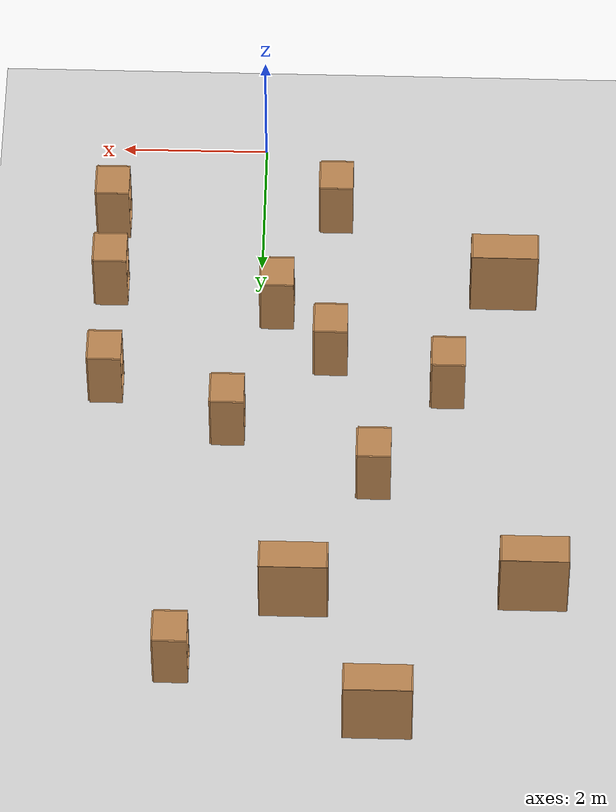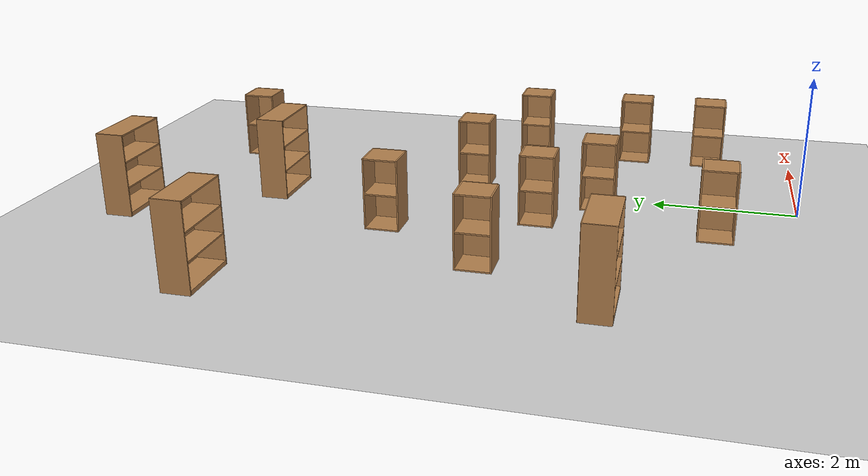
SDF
<sdf version="1.6">
 <world name="default">
  <model name="ground_plane">
   <static>1</static>
   <link name="link">
    <collision name="collision">
     <geometry><plane><normal>0 0 1</normal><size>100 100</size></plane></geometry>
     <surface><friction><ode><mu>100</mu><mu2>50</mu2></ode></friction></surface>
    </collision>
    <visual name="visual">
     <cast_shadows>0</cast_shadows>
     <geometry><plane><normal>0 0 1</normal><size>100 100</size></plane></geometry>
     <material>
      <script><uri>file://media/materials/scripts/gazebo.material</uri><name>Gazebo/Grey</name></script>
     </material>
    </visual>
   </link>
  </model>
  <model name="bookshelf_4">
   <static>1</static>
   <link name="link">
    <inertial><mass>1</mass></inertial>
    <collision name="back">
     <pose>0 0.005 0.6 0 -0 0</pose>
     <geometry><box><size>0.9 0.01 1.2</size></box></geometry>
    </collision>
    <visual name="visual1">
     <pose>0 0.005 0.6 0 -0 0</pose>
     <geometry><box><size>0.9 0.01 1.2</size></box></geometry>
     <material>
      <script><uri>file://media/materials/scripts/gazebo.material</uri><name>Gazebo/Wood</name></script>
     </material>
    </visual>
    <collision name="left_side">
     <pose>0.45 -0.195 0.6 0 -0 0</pose>
     <geometry><box><size>0.02 0.4 1.2</size></box></geometry>
    </collision>
    <visual name="visual2">
     <pose>0.45 -0.195 0.6 0 -0 0</pose>
     <geometry><box><size>0.02 0.4 1.2</size></box></geometry>
     <material>
      <script><uri>file://media/materials/scripts/gazebo.material</uri><name>Gazebo/Wood</name></script>
     </material>
    </visual>
    <collision name="right_side">
     <pose>-0.45 -0.195 0.6 0 -0 0</pose>
     <geometry><box><size>0.02 0.4 1.2</size></box></geometry>
    </collision>
    <visual name="visual3">
     <pose>-0.45 -0.195 0.6 0 -0 0</pose>
     <geometry><box><size>0.02 0.4 1.2</size></box></geometry>
     <material>
      <script><uri>file://media/materials/scripts/gazebo.material</uri><name>Gazebo/Wood</name></script>
     </material>
    </visual>
    <collision name="bottom">
     <pose>0 -0.195 0.03 0 -0 0</pose>
     <geometry><box><size>0.88 0.4 0.06</size></box></geometry>
    </collision>
    <visual name="visual4">
     <pose>0 -0.195 0.03 0 -0 0</pose>
     <geometry><box><size>0.88 0.4 0.06</size></box></geometry>
     <material>
      <script><uri>file://media/materials/scripts/gazebo.material</uri><name>Gazebo/Wood</name></script>
     </material>
    </visual>
    <collision name="top">
     <pose>0 -0.195 1.19 0 -0 0</pose>
     <geometry><box><size>0.88 0.4 0.02</size></box></geometry>
    </collision>
    <visual name="visual5">
     <pose>0 -0.195 1.19 0 -0 0</pose>
     <geometry><box><size>0.88 0.4 0.02</size></box></geometry>
     <material>
      <script><uri>file://media/materials/scripts/gazebo.material</uri><name>Gazebo/Wood</name></script>
     </material>
    </visual>
    <collision name="low_shelf">
     <pose>0 -0.195 0.43 0 -0 0</pose>
     <geometry><box><size>0.88 0.4 0.02</size></box></geometry>
    </collision>
    <visual name="visual6">
     <pose>0 -0.195 0.43 0 -0 0</pose>
     <geometry><box><size>0.88 0.4 0.02</size></box></geometry>
     <material>
      <script><uri>file://media/materials/scripts/gazebo.material</uri><name>Gazebo/Wood</name></script>
     </material>
    </visual>
    <collision name="high_shelf">
     <pose>0 -0.195 0.8 0 -0 0</pose>
     <geometry><box><size>0.88 0.4 0.02</size></box></geometry>
    </collision>
    <visual name="visual7">
     <pose>0 -0.195 0.8 0 -0 0</pose>
     <geometry><box><size>0.88 0.4 0.02</size></box></geometry>
     <material>
      <script><uri>file://media/materials/scripts/gazebo.material</uri><name>Gazebo/Wood</name></script>
     </material>
    </visual>
   </link>
   <pose>-1.73803 9.54025 0 0 -0 0</pose>
  </model>
  <model name="bookshelf_5">
   <static>1</static>
   <link name="link">
    <inertial><mass>1</mass></inertial>
    <collision name="back">
     <pose>0 0.005 0.6 0 -0 0</pose>
     <geometry><box><size>0.9 0.01 1.2</size></box></geometry>
    </collision>
    <visual name="visual1">
     <pose>0 0.005 0.6 0 -0 0</pose>
     <geometry><box><size>0.9 0.01 1.2</size></box></geometry>
     <material>
      <script><uri>file://media/materials/scripts/gazebo.material</uri><name>Gazebo/Wood</name></script>
     </material>
    </visual>
    <collision name="left_side">
     <pose>0.45 -0.195 0.6 0 -0 0</pose>
     <geometry><box><size>0.02 0.4 1.2</size></box></geometry>
    </collision>
    <visual name="visual2">
     <pose>0.45 -0.195 0.6 0 -0 0</pose>
     <geometry><box><size>0.02 0.4 1.2</size></box></geometry>
     <material>
      <script><uri>file://media/materials/scripts/gazebo.material</uri><name>Gazebo/Wood</name></script>
     </material>
    </visual>
    <collision name="right_side">
     <pose>-0.45 -0.195 0.6 0 -0 0</pose>
     <geometry><box><size>0.02 0.4 1.2</size></box></geometry>
    </collision>
    <visual name="visual3">
     <pose>-0.45 -0.195 0.6 0 -0 0</pose>
     <geometry><box><size>0.02 0.4 1.2</size></box></geometry>
     <material>
      <script><uri>file://media/materials/scripts/gazebo.material</uri><name>Gazebo/Wood</name></script>
     </material>
    </visual>
    <collision name="bottom">
     <pose>0 -0.195 0.03 0 -0 0</pose>
     <geometry><box><size>0.88 0.4 0.06</size></box></geometry>
    </collision>
    <visual name="visual4">
     <pose>0 -0.195 0.03 0 -0 0</pose>
     <geometry><box><size>0.88 0.4 0.06</size></box></geometry>
     <material>
      <script><uri>file://media/materials/scripts/gazebo.material</uri><name>Gazebo/Wood</name></script>
     </material>
    </visual>
    <collision name="top">
     <pose>0 -0.195 1.19 0 -0 0</pose>
     <geometry><box><size>0.88 0.4 0.02</size></box></geometry>
    </collision>
    <visual name="visual5">
     <pose>0 -0.195 1.19 0 -0 0</pose>
     <geometry><box><size>0.88 0.4 0.02</size></box></geometry>
     <material>
      <script><uri>file://media/materials/scripts/gazebo.material</uri><name>Gazebo/Wood</name></script>
     </material>
    </visual>
    <collision name="low_shelf">
     <pose>0 -0.195 0.43 0 -0 0</pose>
     <geometry><box><size>0.88 0.4 0.02</size></box></geometry>
    </collision>
    <visual name="visual6">
     <pose>0 -0.195 0.43 0 -0 0</pose>
     <geometry><box><size>0.88 0.4 0.02</size></box></geometry>
     <material>
      <script><uri>file://media/materials/scripts/gazebo.material</uri><name>Gazebo/Wood</name></script>
     </material>
    </visual>
    <collision name="high_shelf">
     <pose>0 -0.195 0.8 0 -0 0</pose>
     <geometry><box><size>0.88 0.4 0.02</size></box></geometry>
    </collision>
    <visual name="visual7">
     <pose>0 -0.195 0.8 0 -0 0</pose>
     <geometry><box><size>0.88 0.4 0.02</size></box></geometry>
     <material>
      <script><uri>file://media/materials/scripts/gazebo.material</uri><name>Gazebo/Wood</name></script>
     </material>
    </visual>
   </link>
   <pose>-0.58974 7.68107 0 0 -0 0</pose>
  </model>
  <model name="bookshelf_7">
   <static>1</static>
   <link name="link">
    <inertial><mass>1</mass></inertial>
    <collision name="back">
     <pose>0 0.005 0.6 0 -0 0</pose>
     <geometry><box><size>0.9 0.01 1.2</size></box></geometry>
    </collision>
    <visual name="visual1">
     <pose>0 0.005 0.6 0 -0 0</pose>
     <geometry><box><size>0.9 0.01 1.2</size></box></geometry>
     <material>
      <script><uri>file://media/materials/scripts/gazebo.material</uri><name>Gazebo/Wood</name></script>
     </material>
    </visual>
    <collision name="left_side">
     <pose>0.45 -0.195 0.6 0 -0 0</pose>
     <geometry><box><size>0.02 0.4 1.2</size></box></geometry>
    </collision>
    <visual name="visual2">
     <pose>0.45 -0.195 0.6 0 -0 0</pose>
     <geometry><box><size>0.02 0.4 1.2</size></box></geometry>
     <material>
      <script><uri>file://media/materials/scripts/gazebo.material</uri><name>Gazebo/Wood</name></script>
     </material>
    </visual>
    <collision name="right_side">
     <pose>-0.45 -0.195 0.6 0 -0 0</pose>
     <geometry><box><size>0.02 0.4 1.2</size></box></geometry>
    </collision>
    <visual name="visual3">
     <pose>-0.45 -0.195 0.6 0 -0 0</pose>
     <geometry><box><size>0.02 0.4 1.2</size></box></geometry>
     <material>
      <script><uri>file://media/materials/scripts/gazebo.material</uri><name>Gazebo/Wood</name></script>
     </material>
    </visual>
    <collision name="bottom">
     <pose>0 -0.195 0.03 0 -0 0</pose>
     <geometry><box><size>0.88 0.4 0.06</size></box></geometry>
    </collision>
    <visual name="visual4">
     <pose>0 -0.195 0.03 0 -0 0</pose>
     <geometry><box><size>0.88 0.4 0.06</size></box></geometry>
     <material>
      <script><uri>file://media/materials/scripts/gazebo.material</uri><name>Gazebo/Wood</name></script>
     </material>
    </visual>
    <collision name="top">
     <pose>0 -0.195 1.19 0 -0 0</pose>
     <geometry><box><size>0.88 0.4 0.02</size></box></geometry>
    </collision>
    <visual name="visual5">
     <pose>0 -0.195 1.19 0 -0 0</pose>
     <geometry><box><size>0.88 0.4 0.02</size></box></geometry>
     <material>
      <script><uri>file://media/materials/scripts/gazebo.material</uri><name>Gazebo/Wood</name></script>
     </material>
    </visual>
    <collision name="low_shelf">
     <pose>0 -0.195 0.43 0 -0 0</pose>
     <geometry><box><size>0.88 0.4 0.02</size></box></geometry>
    </collision>
    <visual name="visual6">
     <pose>0 -0.195 0.43 0 -0 0</pose>
     <geometry><box><size>0.88 0.4 0.02</size></box></geometry>
     <material>
      <script><uri>file://media/materials/scripts/gazebo.material</uri><name>Gazebo/Wood</name></script>
     </material>
    </visual>
    <collision name="high_shelf">
     <pose>0 -0.195 0.8 0 -0 0</pose>
     <geometry><box><size>0.88 0.4 0.02</size></box></geometry>
    </collision>
    <visual name="visual7">
     <pose>0 -0.195 0.8 0 -0 0</pose>
     <geometry><box><size>0.88 0.4 0.02</size></box></geometry>
     <material>
      <script><uri>file://media/materials/scripts/gazebo.material</uri><name>Gazebo/Wood</name></script>
     </material>
    </visual>
   </link>
   <pose>-3.76246 7.5113 0 0 -0 0</pose>
  </model>
  <model name="cabinet">
   <static>1</static>
   <link name="cabinet_bottom_plate">
    <inertial>
     <pose>0 0 -1 0 -0 0</pose>
     <inertia><ixx>2.05</ixx><ixy>0</ixy><ixz>0</ixz><iyy>2.05</iyy><iyz>0</iyz><izz>2.05</izz></inertia>
     <mass>25</mass>
    </inertial>
    <collision name="cabinet_bottom_plate_geom">
     <pose>0 0 0.01 0 -0 0</pose>
     <geometry><box><size>0.45 0.45 0.02</size></box></geometry>
    </collision>
    <visual name="cabinet_bottom_plate_geom_visual">
     <pose>0 0 0.01 0 -0 0</pose>
     <geometry><box><size>0.45 0.45 0.02</size></box></geometry>
     <material>
      <script><uri>file://media/materials/scripts/gazebo.material</uri><name>Gazebo/Wood</name></script>
     </material>
    </visual>
    <collision name="cabinet_bottom_plate_geom_cabinet_back_plate">
     <pose>0.235 0 0.51 0 -0 0</pose>
     <geometry><box><size>0.02 0.45 1.02</size></box></geometry>
    </collision>
    <visual name="cabinet_bottom_plate_geom_cabinet_back_plate_visual">
     <pose>0.235 0 0.51 0 -0 0</pose>
     <geometry><box><size>0.02 0.45 1.02</size></box></geometry>
     <material>
      <script><uri>file://media/materials/scripts/gazebo.material</uri><name>Gazebo/Wood</name></script>
     </material>
    </visual>
    <collision name="cabinet_bottom_plate_geom_cabinet_left_plate">
     <pose>0 0.235 0.51 0 -0 0</pose>
     <geometry><box><size>0.45 0.02 1.02</size></box></geometry>
    </collision>
    <visual name="cabinet_bottom_plate_geom_cabinet_left_plate_visual">
     <pose>0 0.235 0.51 0 -0 0</pose>
     <geometry><box><size>0.45 0.02 1.02</size></box></geometry>
     <material>
      <script><uri>file://media/materials/scripts/gazebo.material</uri><name>Gazebo/Wood</name></script>
     </material>
    </visual>
    <collision name="cabinet_bottom_plate_geom_cabinet_middle_plate">
     <pose>0 0 0.51 0 -0 0</pose>
     <geometry><box><size>0.45 0.45 0.02</size></box></geometry>
    </collision>
    <visual name="cabinet_bottom_plate_geom_cabinet_middle_plate_visual">
     <pose>0 0 0.51 0 -0 0</pose>
     <geometry><box><size>0.45 0.45 0.02</size></box></geometry>
     <material>
      <script><uri>file://media/materials/scripts/gazebo.material</uri><name>Gazebo/Wood</name></script>
     </material>
    </visual>
    <collision name="cabinet_bottom_plate_geom_cabinet_right_plate">
     <pose>0 -0.235 0.51 0 -0 0</pose>
     <geometry><box><size>0.45 0.02 1.02</size></box></geometry>
    </collision>
    <visual name="cabinet_bottom_plate_geom_cabinet_right_plate_visual">
     <pose>0 -0.235 0.51 0 -0 0</pose>
     <geometry><box><size>0.45 0.02 1.02</size></box></geometry>
     <material>
      <script><uri>file://media/materials/scripts/gazebo.material</uri><name>Gazebo/Wood</name></script>
     </material>
    </visual>
    <collision name="cabinet_bottom_plate_geom_cabinet_top_plate">
     <pose>0 0 1.01 0 -0 0</pose>
     <geometry><box><size>0.45 0.45 0.02</size></box></geometry>
    </collision>
    <visual name="cabinet_bottom_plate_geom_cabinet_top_plate_visual">
     <pose>0 0 1.01 0 -0 0</pose>
     <geometry><box><size>0.45 0.45 0.02</size></box></geometry>
     <material>
      <script><uri>file://media/materials/scripts/gazebo.material</uri><name>Gazebo/Wood</name></script>
     </material>
    </visual>
   </link>
   <pose>0.987671 8.5173 0 0 -0 0</pose>
  </model>
  <model name="bookshelf_33">
   <static>1</static>
   <link name="link">
    <inertial><mass>1</mass></inertial>
    <collision name="back">
     <pose>0 0.005 0.6 0 -0 0</pose>
     <geometry><box><size>0.9 0.01 1.2</size></box></geometry>
    </collision>
    <visual name="visual1">
     <pose>0 0.005 0.6 0 -0 0</pose>
     <geometry><box><size>0.9 0.01 1.2</size></box></geometry>
     <material>
      <script><uri>file://media/materials/scripts/gazebo.material</uri><name>Gazebo/Wood</name></script>
     </material>
    </visual>
    <collision name="left_side">
     <pose>0.45 -0.195 0.6 0 -0 0</pose>
     <geometry><box><size>0.02 0.4 1.2</size></box></geometry>
    </collision>
    <visual name="visual2">
     <pose>0.45 -0.195 0.6 0 -0 0</pose>
     <geometry><box><size>0.02 0.4 1.2</size></box></geometry>
     <material>
      <script><uri>file://media/materials/scripts/gazebo.material</uri><name>Gazebo/Wood</name></script>
     </material>
    </visual>
    <collision name="right_side">
     <pose>-0.45 -0.195 0.6 0 -0 0</pose>
     <geometry><box><size>0.02 0.4 1.2</size></box></geometry>
    </collision>
    <visual name="visual3">
     <pose>-0.45 -0.195 0.6 0 -0 0</pose>
     <geometry><box><size>0.02 0.4 1.2</size></box></geometry>
     <material>
      <script><uri>file://media/materials/scripts/gazebo.material</uri><name>Gazebo/Wood</name></script>
     </material>
    </visual>
    <collision name="bottom">
     <pose>0 -0.195 0.03 0 -0 0</pose>
     <geometry><box><size>0.88 0.4 0.06</size></box></geometry>
    </collision>
    <visual name="visual4">
     <pose>0 -0.195 0.03 0 -0 0</pose>
     <geometry><box><size>0.88 0.4 0.06</size></box></geometry>
     <material>
      <script><uri>file://media/materials/scripts/gazebo.material</uri><name>Gazebo/Wood</name></script>
     </material>
    </visual>
    <collision name="top">
     <pose>0 -0.195 1.19 0 -0 0</pose>
     <geometry><box><size>0.88 0.4 0.02</size></box></geometry>
    </collision>
    <visual name="visual5">
     <pose>0 -0.195 1.19 0 -0 0</pose>
     <geometry><box><size>0.88 0.4 0.02</size></box></geometry>
     <material>
      <script><uri>file://media/materials/scripts/gazebo.material</uri><name>Gazebo/Wood</name></script>
     </material>
    </visual>
    <collision name="low_shelf">
     <pose>0 -0.195 0.43 0 -0 0</pose>
     <geometry><box><size>0.88 0.4 0.02</size></box></geometry>
    </collision>
    <visual name="visual6">
     <pose>0 -0.195 0.43 0 -0 0</pose>
     <geometry><box><size>0.88 0.4 0.02</size></box></geometry>
     <material>
      <script><uri>file://media/materials/scripts/gazebo.material</uri><name>Gazebo/Wood</name></script>
     </material>
    </visual>
    <collision name="high_shelf">
     <pose>0 -0.195 0.8 0 -0 0</pose>
     <geometry><box><size>0.88 0.4 0.02</size></box></geometry>
    </collision>
    <visual name="visual7">
     <pose>0 -0.195 0.8 0 -0 0</pose>
     <geometry><box><size>0.88 0.4 0.02</size></box></geometry>
     <material>
      <script><uri>file://media/materials/scripts/gazebo.material</uri><name>Gazebo/Wood</name></script>
     </material>
    </visual>
   </link>
   <pose>-3.33267 2.61567 0 0 -0 0</pose>
  </model>
  <model name="cabinet_33">
   <static>1</static>
   <link name="cabinet_bottom_plate">
    <inertial>
     <pose>0 0 -1 0 -0 0</pose>
     <inertia><ixx>2.05</ixx><ixy>0</ixy><ixz>0</ixz><iyy>2.05</iyy><iyz>0</iyz><izz>2.05</izz></inertia>
     <mass>25</mass>
    </inertial>
    <collision name="cabinet_bottom_plate_geom">
     <pose>0 0 0.01 0 -0 0</pose>
     <geometry><box><size>0.45 0.45 0.02</size></box></geometry>
    </collision>
    <visual name="cabinet_bottom_plate_geom_visual">
     <pose>0 0 0.01 0 -0 0</pose>
     <geometry><box><size>0.45 0.45 0.02</size></box></geometry>
     <material>
      <script><uri>file://media/materials/scripts/gazebo.material</uri><name>Gazebo/Wood</name></script>
     </material>
    </visual>
    <collision name="cabinet_bottom_plate_geom_cabinet_back_plate">
     <pose>0.235 0 0.51 0 -0 0</pose>
     <geometry><box><size>0.02 0.45 1.02</size></box></geometry>
    </collision>
    <visual name="cabinet_bottom_plate_geom_cabinet_back_plate_visual">
     <pose>0.235 0 0.51 0 -0 0</pose>
     <geometry><box><size>0.02 0.45 1.02</size></box></geometry>
     <material>
      <script><uri>file://media/materials/scripts/gazebo.material</uri><name>Gazebo/Wood</name></script>
     </material>
    </visual>
    <collision name="cabinet_bottom_plate_geom_cabinet_left_plate">
     <pose>0 0.235 0.51 0 -0 0</pose>
     <geometry><box><size>0.45 0.02 1.02</size></box></geometry>
    </collision>
    <visual name="cabinet_bottom_plate_geom_cabinet_left_plate_visual">
     <pose>0 0.235 0.51 0 -0 0</pose>
     <geometry><box><size>0.45 0.02 1.02</size></box></geometry>
     <material>
      <script><uri>file://media/materials/scripts/gazebo.material</uri><name>Gazebo/Wood</name></script>
     </material>
    </visual>
    <collision name="cabinet_bottom_plate_geom_cabinet_middle_plate">
     <pose>0 0 0.51 0 -0 0</pose>
     <geometry><box><size>0.45 0.45 0.02</size></box></geometry>
    </collision>
    <visual name="cabinet_bottom_plate_geom_cabinet_middle_plate_visual">
     <pose>0 0 0.51 0 -0 0</pose>
     <geometry><box><size>0.45 0.45 0.02</size></box></geometry>
     <material>
      <script><uri>file://media/materials/scripts/gazebo.material</uri><name>Gazebo/Wood</name></script>
     </material>
    </visual>
    <collision name="cabinet_bottom_plate_geom_cabinet_right_plate">
     <pose>0 -0.235 0.51 0 -0 0</pose>
     <geometry><box><size>0.45 0.02 1.02</size></box></geometry>
    </collision>
    <visual name="cabinet_bottom_plate_geom_cabinet_right_plate_visual">
     <pose>0 -0.235 0.51 0 -0 0</pose>
     <geometry><box><size>0.45 0.02 1.02</size></box></geometry>
     <material>
      <script><uri>file://media/materials/scripts/gazebo.material</uri><name>Gazebo/Wood</name></script>
     </material>
    </visual>
    <collision name="cabinet_bottom_plate_geom_cabinet_top_plate">
     <pose>0 0 1.01 0 -0 0</pose>
     <geometry><box><size>0.45 0.45 0.02</size></box></geometry>
    </collision>
    <visual name="cabinet_bottom_plate_geom_cabinet_top_plate_visual">
     <pose>0 0 1.01 0 -0 0</pose>
     <geometry><box><size>0.45 0.45 0.02</size></box></geometry>
     <material>
      <script><uri>file://media/materials/scripts/gazebo.material</uri><name>Gazebo/Wood</name></script>
     </material>
    </visual>
   </link>
   <pose>-2.59292 4.05344 0 0 -0 0</pose>
  </model>
  <model name="cabinet_38">
   <static>1</static>
   <link name="cabinet_bottom_plate">
    <inertial>
     <pose>0 0 -1 0 -0 0</pose>
     <inertia><ixx>2.05</ixx><ixy>0</ixy><ixz>0</ixz><iyy>2.05</iyy><iyz>0</iyz><izz>2.05</izz></inertia>
     <mass>25</mass>
    </inertial>
    <collision name="cabinet_bottom_plate_geom">
     <pose>0 0 0.01 0 -0 0</pose>
     <geometry><box><size>0.45 0.45 0.02</size></box></geometry>
    </collision>
    <visual name="cabinet_bottom_plate_geom_visual">
     <pose>0 0 0.01 0 -0 0</pose>
     <geometry><box><size>0.45 0.45 0.02</size></box></geometry>
     <material>
      <script><uri>file://media/materials/scripts/gazebo.material</uri><name>Gazebo/Wood</name></script>
     </material>
    </visual>
    <collision name="cabinet_bottom_plate_geom_cabinet_back_plate">
     <pose>0.235 0 0.51 0 -0 0</pose>
     <geometry><box><size>0.02 0.45 1.02</size></box></geometry>
    </collision>
    <visual name="cabinet_bottom_plate_geom_cabinet_back_plate_visual">
     <pose>0.235 0 0.51 0 -0 0</pose>
     <geometry><box><size>0.02 0.45 1.02</size></box></geometry>
     <material>
      <script><uri>file://media/materials/scripts/gazebo.material</uri><name>Gazebo/Wood</name></script>
     </material>
    </visual>
    <collision name="cabinet_bottom_plate_geom_cabinet_left_plate">
     <pose>0 0.235 0.51 0 -0 0</pose>
     <geometry><box><size>0.45 0.02 1.02</size></box></geometry>
    </collision>
    <visual name="cabinet_bottom_plate_geom_cabinet_left_plate_visual">
     <pose>0 0.235 0.51 0 -0 0</pose>
     <geometry><box><size>0.45 0.02 1.02</size></box></geometry>
     <material>
      <script><uri>file://media/materials/scripts/gazebo.material</uri><name>Gazebo/Wood</name></script>
     </material>
    </visual>
    <collision name="cabinet_bottom_plate_geom_cabinet_middle_plate">
     <pose>0 0 0.51 0 -0 0</pose>
     <geometry><box><size>0.45 0.45 0.02</size></box></geometry>
    </collision>
    <visual name="cabinet_bottom_plate_geom_cabinet_middle_plate_visual">
     <pose>0 0 0.51 0 -0 0</pose>
     <geometry><box><size>0.45 0.45 0.02</size></box></geometry>
     <material>
      <script><uri>file://media/materials/scripts/gazebo.material</uri><name>Gazebo/Wood</name></script>
     </material>
    </visual>
    <collision name="cabinet_bottom_plate_geom_cabinet_right_plate">
     <pose>0 -0.235 0.51 0 -0 0</pose>
     <geometry><box><size>0.45 0.02 1.02</size></box></geometry>
    </collision>
    <visual name="cabinet_bottom_plate_geom_cabinet_right_plate_visual">
     <pose>0 -0.235 0.51 0 -0 0</pose>
     <geometry><box><size>0.45 0.02 1.02</size></box></geometry>
     <material>
      <script><uri>file://media/materials/scripts/gazebo.material</uri><name>Gazebo/Wood</name></script>
     </material>
    </visual>
    <collision name="cabinet_bottom_plate_geom_cabinet_top_plate">
     <pose>0 0 1.01 0 -0 0</pose>
     <geometry><box><size>0.45 0.45 0.02</size></box></geometry>
    </collision>
    <visual name="cabinet_bottom_plate_geom_cabinet_top_plate_visual">
     <pose>0 0 1.01 0 -0 0</pose>
     <geometry><box><size>0.45 0.45 0.02</size></box></geometry>
     <material>
      <script><uri>file://media/materials/scripts/gazebo.material</uri><name>Gazebo/Wood</name></script>
     </material>
    </visual>
   </link>
   <pose>-1.01025 1.12892 0 0 -0 0</pose>
  </model>
  <model name="cabinet_40">
   <static>1</static>
   <link name="cabinet_bottom_plate">
    <inertial>
     <pose>0 0 -1 0 -0 0</pose>
     <inertia><ixx>2.05</ixx><ixy>0</ixy><ixz>0</ixz><iyy>2.05</iyy><iyz>0</iyz><izz>2.05</izz></inertia>
     <mass>25</mass>
    </inertial>
    <collision name="cabinet_bottom_plate_geom">
     <pose>0 0 0.01 0 -0 0</pose>
     <geometry><box><size>0.45 0.45 0.02</size></box></geometry>
    </collision>
    <visual name="cabinet_bottom_plate_geom_visual">
     <pose>0 0 0.01 0 -0 0</pose>
     <geometry><box><size>0.45 0.45 0.02</size></box></geometry>
     <material>
      <script><uri>file://media/materials/scripts/gazebo.material</uri><name>Gazebo/Wood</name></script>
     </material>
    </visual>
    <collision name="cabinet_bottom_plate_geom_cabinet_back_plate">
     <pose>0.235 0 0.51 0 -0 0</pose>
     <geometry><box><size>0.02 0.45 1.02</size></box></geometry>
    </collision>
    <visual name="cabinet_bottom_plate_geom_cabinet_back_plate_visual">
     <pose>0.235 0 0.51 0 -0 0</pose>
     <geometry><box><size>0.02 0.45 1.02</size></box></geometry>
     <material>
      <script><uri>file://media/materials/scripts/gazebo.material</uri><name>Gazebo/Wood</name></script>
     </material>
    </visual>
    <collision name="cabinet_bottom_plate_geom_cabinet_left_plate">
     <pose>0 0.235 0.51 0 -0 0</pose>
     <geometry><box><size>0.45 0.02 1.02</size></box></geometry>
    </collision>
    <visual name="cabinet_bottom_plate_geom_cabinet_left_plate_visual">
     <pose>0 0.235 0.51 0 -0 0</pose>
     <geometry><box><size>0.45 0.02 1.02</size></box></geometry>
     <material>
      <script><uri>file://media/materials/scripts/gazebo.material</uri><name>Gazebo/Wood</name></script>
     </material>
    </visual>
    <collision name="cabinet_bottom_plate_geom_cabinet_middle_plate">
     <pose>0 0 0.51 0 -0 0</pose>
     <geometry><box><size>0.45 0.45 0.02</size></box></geometry>
    </collision>
    <visual name="cabinet_bottom_plate_geom_cabinet_middle_plate_visual">
     <pose>0 0 0.51 0 -0 0</pose>
     <geometry><box><size>0.45 0.45 0.02</size></box></geometry>
     <material>
      <script><uri>file://media/materials/scripts/gazebo.material</uri><name>Gazebo/Wood</name></script>
     </material>
    </visual>
    <collision name="cabinet_bottom_plate_geom_cabinet_right_plate">
     <pose>0 -0.235 0.51 0 -0 0</pose>
     <geometry><box><size>0.45 0.02 1.02</size></box></geometry>
    </collision>
    <visual name="cabinet_bottom_plate_geom_cabinet_right_plate_visual">
     <pose>0 -0.235 0.51 0 -0 0</pose>
     <geometry><box><size>0.45 0.02 1.02</size></box></geometry>
     <material>
      <script><uri>file://media/materials/scripts/gazebo.material</uri><name>Gazebo/Wood</name></script>
     </material>
    </visual>
    <collision name="cabinet_bottom_plate_geom_cabinet_top_plate">
     <pose>0 0 1.01 0 -0 0</pose>
     <geometry><box><size>0.45 0.45 0.02</size></box></geometry>
    </collision>
    <visual name="cabinet_bottom_plate_geom_cabinet_top_plate_visual">
     <pose>0 0 1.01 0 -0 0</pose>
     <geometry><box><size>0.45 0.45 0.02</size></box></geometry>
     <material>
      <script><uri>file://media/materials/scripts/gazebo.material</uri><name>Gazebo/Wood</name></script>
     </material>
    </visual>
   </link>
   <pose>-0.99063 3.54391 0 0 -0 0</pose>
  </model>
  <model name="cabinet_41">
   <static>1</static>
   <link name="cabinet_bottom_plate">
    <inertial>
     <pose>0 0 -1 0 -0 0</pose>
     <inertia><ixx>2.05</ixx><ixy>0</ixy><ixz>0</ixz><iyy>2.05</iyy><iyz>0</iyz><izz>2.05</izz></inertia>
     <mass>25</mass>
    </inertial>
    <collision name="cabinet_bottom_plate_geom">
     <pose>0 0 0.01 0 -0 0</pose>
     <geometry><box><size>0.45 0.45 0.02</size></box></geometry>
    </collision>
    <visual name="cabinet_bottom_plate_geom_visual">
     <pose>0 0 0.01 0 -0 0</pose>
     <geometry><box><size>0.45 0.45 0.02</size></box></geometry>
     <material>
      <script><uri>file://media/materials/scripts/gazebo.material</uri><name>Gazebo/Wood</name></script>
     </material>
    </visual>
    <collision name="cabinet_bottom_plate_geom_cabinet_back_plate">
     <pose>0.235 0 0.51 0 -0 0</pose>
     <geometry><box><size>0.02 0.45 1.02</size></box></geometry>
    </collision>
    <visual name="cabinet_bottom_plate_geom_cabinet_back_plate_visual">
     <pose>0.235 0 0.51 0 -0 0</pose>
     <geometry><box><size>0.02 0.45 1.02</size></box></geometry>
     <material>
      <script><uri>file://media/materials/scripts/gazebo.material</uri><name>Gazebo/Wood</name></script>
     </material>
    </visual>
    <collision name="cabinet_bottom_plate_geom_cabinet_left_plate">
     <pose>0 0.235 0.51 0 -0 0</pose>
     <geometry><box><size>0.45 0.02 1.02</size></box></geometry>
    </collision>
    <visual name="cabinet_bottom_plate_geom_cabinet_left_plate_visual">
     <pose>0 0.235 0.51 0 -0 0</pose>
     <geometry><box><size>0.45 0.02 1.02</size></box></geometry>
     <material>
      <script><uri>file://media/materials/scripts/gazebo.material</uri><name>Gazebo/Wood</name></script>
     </material>
    </visual>
    <collision name="cabinet_bottom_plate_geom_cabinet_middle_plate">
     <pose>0 0 0.51 0 -0 0</pose>
     <geometry><box><size>0.45 0.45 0.02</size></box></geometry>
    </collision>
    <visual name="cabinet_bottom_plate_geom_cabinet_middle_plate_visual">
     <pose>0 0 0.51 0 -0 0</pose>
     <geometry><box><size>0.45 0.45 0.02</size></box></geometry>
     <material>
      <script><uri>file://media/materials/scripts/gazebo.material</uri><name>Gazebo/Wood</name></script>
     </material>
    </visual>
    <collision name="cabinet_bottom_plate_geom_cabinet_right_plate">
     <pose>0 -0.235 0.51 0 -0 0</pose>
     <geometry><box><size>0.45 0.02 1.02</size></box></geometry>
    </collision>
    <visual name="cabinet_bottom_plate_geom_cabinet_right_plate_visual">
     <pose>0 -0.235 0.51 0 -0 0</pose>
     <geometry><box><size>0.45 0.02 1.02</size></box></geometry>
     <material>
      <script><uri>file://media/materials/scripts/gazebo.material</uri><name>Gazebo/Wood</name></script>
     </material>
    </visual>
    <collision name="cabinet_bottom_plate_geom_cabinet_top_plate">
     <pose>0 0 1.01 0 -0 0</pose>
     <geometry><box><size>0.45 0.45 0.02</size></box></geometry>
    </collision>
    <visual name="cabinet_bottom_plate_geom_cabinet_top_plate_visual">
     <pose>0 0 1.01 0 -0 0</pose>
     <geometry><box><size>0.45 0.45 0.02</size></box></geometry>
     <material>
      <script><uri>file://media/materials/scripts/gazebo.material</uri><name>Gazebo/Wood</name></script>
     </material>
    </visual>
   </link>
   <pose>-1.61724 5.55802 0 0 -0 0</pose>
  </model>
  <model name="cabinet_42">
   <static>1</static>
   <link name="cabinet_bottom_plate">
    <inertial>
     <pose>0 0 -1 0 -0 0</pose>
     <inertia><ixx>2.05</ixx><ixy>0</ixy><ixz>0</ixz><iyy>2.05</iyy><iyz>0</iyz><izz>2.05</izz></inertia>
     <mass>25</mass>
    </inertial>
    <collision name="cabinet_bottom_plate_geom">
     <pose>0 0 0.01 0 -0 0</pose>
     <geometry><box><size>0.45 0.45 0.02</size></box></geometry>
    </collision>
    <visual name="cabinet_bottom_plate_geom_visual">
     <pose>0 0 0.01 0 -0 0</pose>
     <geometry><box><size>0.45 0.45 0.02</size></box></geometry>
     <material>
      <script><uri>file://media/materials/scripts/gazebo.material</uri><name>Gazebo/Wood</name></script>
     </material>
    </visual>
    <collision name="cabinet_bottom_plate_geom_cabinet_back_plate">
     <pose>0.235 0 0.51 0 -0 0</pose>
     <geometry><box><size>0.02 0.45 1.02</size></box></geometry>
    </collision>
    <visual name="cabinet_bottom_plate_geom_cabinet_back_plate_visual">
     <pose>0.235 0 0.51 0 -0 0</pose>
     <geometry><box><size>0.02 0.45 1.02</size></box></geometry>
     <material>
      <script><uri>file://media/materials/scripts/gazebo.material</uri><name>Gazebo/Wood</name></script>
     </material>
    </visual>
    <collision name="cabinet_bottom_plate_geom_cabinet_left_plate">
     <pose>0 0.235 0.51 0 -0 0</pose>
     <geometry><box><size>0.45 0.02 1.02</size></box></geometry>
    </collision>
    <visual name="cabinet_bottom_plate_geom_cabinet_left_plate_visual">
     <pose>0 0.235 0.51 0 -0 0</pose>
     <geometry><box><size>0.45 0.02 1.02</size></box></geometry>
     <material>
      <script><uri>file://media/materials/scripts/gazebo.material</uri><name>Gazebo/Wood</name></script>
     </material>
    </visual>
    <collision name="cabinet_bottom_plate_geom_cabinet_middle_plate">
     <pose>0 0 0.51 0 -0 0</pose>
     <geometry><box><size>0.45 0.45 0.02</size></box></geometry>
    </collision>
    <visual name="cabinet_bottom_plate_geom_cabinet_middle_plate_visual">
     <pose>0 0 0.51 0 -0 0</pose>
     <geometry><box><size>0.45 0.45 0.02</size></box></geometry>
     <material>
      <script><uri>file://media/materials/scripts/gazebo.material</uri><name>Gazebo/Wood</name></script>
     </material>
    </visual>
    <collision name="cabinet_bottom_plate_geom_cabinet_right_plate">
     <pose>0 -0.235 0.51 0 -0 0</pose>
     <geometry><box><size>0.45 0.02 1.02</size></box></geometry>
    </collision>
    <visual name="cabinet_bottom_plate_geom_cabinet_right_plate_visual">
     <pose>0 -0.235 0.51 0 -0 0</pose>
     <geometry><box><size>0.45 0.02 1.02</size></box></geometry>
     <material>
      <script><uri>file://media/materials/scripts/gazebo.material</uri><name>Gazebo/Wood</name></script>
     </material>
    </visual>
    <collision name="cabinet_bottom_plate_geom_cabinet_top_plate">
     <pose>0 0 1.01 0 -0 0</pose>
     <geometry><box><size>0.45 0.45 0.02</size></box></geometry>
    </collision>
    <visual name="cabinet_bottom_plate_geom_cabinet_top_plate_visual">
     <pose>0 0 1.01 0 -0 0</pose>
     <geometry><box><size>0.45 0.45 0.02</size></box></geometry>
     <material>
      <script><uri>file://media/materials/scripts/gazebo.material</uri><name>Gazebo/Wood</name></script>
     </material>
    </visual>
   </link>
   <pose>-0.23898 2.78627 0 0 -0 0</pose>
  </model>
  <model name="cabinet_43">
   <static>1</static>
   <link name="cabinet_bottom_plate">
    <inertial>
     <pose>0 0 -1 0 -0 0</pose>
     <inertia><ixx>2.05</ixx><ixy>0</ixy><ixz>0</ixz><iyy>2.05</iyy><iyz>0</iyz><izz>2.05</izz></inertia>
     <mass>25</mass>
    </inertial>
    <collision name="cabinet_bottom_plate_geom">
     <pose>0 0 0.01 0 -0 0</pose>
     <geometry><box><size>0.45 0.45 0.02</size></box></geometry>
    </collision>
    <visual name="cabinet_bottom_plate_geom_visual">
     <pose>0 0 0.01 0 -0 0</pose>
     <geometry><box><size>0.45 0.45 0.02</size></box></geometry>
     <material>
      <script><uri>file://media/materials/scripts/gazebo.material</uri><name>Gazebo/Wood</name></script>
     </material>
    </visual>
    <collision name="cabinet_bottom_plate_geom_cabinet_back_plate">
     <pose>0.235 0 0.51 0 -0 0</pose>
     <geometry><box><size>0.02 0.45 1.02</size></box></geometry>
    </collision>
    <visual name="cabinet_bottom_plate_geom_cabinet_back_plate_visual">
     <pose>0.235 0 0.51 0 -0 0</pose>
     <geometry><box><size>0.02 0.45 1.02</size></box></geometry>
     <material>
      <script><uri>file://media/materials/scripts/gazebo.material</uri><name>Gazebo/Wood</name></script>
     </material>
    </visual>
    <collision name="cabinet_bottom_plate_geom_cabinet_left_plate">
     <pose>0 0.235 0.51 0 -0 0</pose>
     <geometry><box><size>0.45 0.02 1.02</size></box></geometry>
    </collision>
    <visual name="cabinet_bottom_plate_geom_cabinet_left_plate_visual">
     <pose>0 0.235 0.51 0 -0 0</pose>
     <geometry><box><size>0.45 0.02 1.02</size></box></geometry>
     <material>
      <script><uri>file://media/materials/scripts/gazebo.material</uri><name>Gazebo/Wood</name></script>
     </material>
    </visual>
    <collision name="cabinet_bottom_plate_geom_cabinet_middle_plate">
     <pose>0 0 0.51 0 -0 0</pose>
     <geometry><box><size>0.45 0.45 0.02</size></box></geometry>
    </collision>
    <visual name="cabinet_bottom_plate_geom_cabinet_middle_plate_visual">
     <pose>0 0 0.51 0 -0 0</pose>
     <geometry><box><size>0.45 0.45 0.02</size></box></geometry>
     <material>
      <script><uri>file://media/materials/scripts/gazebo.material</uri><name>Gazebo/Wood</name></script>
     </material>
    </visual>
    <collision name="cabinet_bottom_plate_geom_cabinet_right_plate">
     <pose>0 -0.235 0.51 0 -0 0</pose>
     <geometry><box><size>0.45 0.02 1.02</size></box></geometry>
    </collision>
    <visual name="cabinet_bottom_plate_geom_cabinet_right_plate_visual">
     <pose>0 -0.235 0.51 0 -0 0</pose>
     <geometry><box><size>0.45 0.02 1.02</size></box></geometry>
     <material>
      <script><uri>file://media/materials/scripts/gazebo.material</uri><name>Gazebo/Wood</name></script>
     </material>
    </visual>
    <collision name="cabinet_bottom_plate_geom_cabinet_top_plate">
     <pose>0 0 1.01 0 -0 0</pose>
     <geometry><box><size>0.45 0.45 0.02</size></box></geometry>
    </collision>
    <visual name="cabinet_bottom_plate_geom_cabinet_top_plate_visual">
     <pose>0 0 1.01 0 -0 0</pose>
     <geometry><box><size>0.45 0.45 0.02</size></box></geometry>
     <material>
      <script><uri>file://media/materials/scripts/gazebo.material</uri><name>Gazebo/Wood</name></script>
     </material>
    </visual>
   </link>
   <pose>0.374258 4.72951 0 0 -0 0</pose>
  </model>
  <model name="cabinet_44">
   <static>1</static>
   <link name="cabinet_bottom_plate">
    <inertial>
     <pose>0 0 -1 0 -0 0</pose>
     <inertia><ixx>2.05</ixx><ixy>0</ixy><ixz>0</ixz><iyy>2.05</iyy><iyz>0</iyz><izz>2.05</izz></inertia>
     <mass>25</mass>
    </inertial>
    <collision name="cabinet_bottom_plate_geom">
     <pose>0 0 0.01 0 -0 0</pose>
     <geometry><box><size>0.45 0.45 0.02</size></box></geometry>
    </collision>
    <visual name="cabinet_bottom_plate_geom_visual">
     <pose>0 0 0.01 0 -0 0</pose>
     <geometry><box><size>0.45 0.45 0.02</size></box></geometry>
     <material>
      <script><uri>file://media/materials/scripts/gazebo.material</uri><name>Gazebo/Wood</name></script>
     </material>
    </visual>
    <collision name="cabinet_bottom_plate_geom_cabinet_back_plate">
     <pose>0.235 0 0.51 0 -0 0</pose>
     <geometry><box><size>0.02 0.45 1.02</size></box></geometry>
    </collision>
    <visual name="cabinet_bottom_plate_geom_cabinet_back_plate_visual">
     <pose>0.235 0 0.51 0 -0 0</pose>
     <geometry><box><size>0.02 0.45 1.02</size></box></geometry>
     <material>
      <script><uri>file://media/materials/scripts/gazebo.material</uri><name>Gazebo/Wood</name></script>
     </material>
    </visual>
    <collision name="cabinet_bottom_plate_geom_cabinet_left_plate">
     <pose>0 0.235 0.51 0 -0 0</pose>
     <geometry><box><size>0.45 0.02 1.02</size></box></geometry>
    </collision>
    <visual name="cabinet_bottom_plate_geom_cabinet_left_plate_visual">
     <pose>0 0.235 0.51 0 -0 0</pose>
     <geometry><box><size>0.45 0.02 1.02</size></box></geometry>
     <material>
      <script><uri>file://media/materials/scripts/gazebo.material</uri><name>Gazebo/Wood</name></script>
     </material>
    </visual>
    <collision name="cabinet_bottom_plate_geom_cabinet_middle_plate">
     <pose>0 0 0.51 0 -0 0</pose>
     <geometry><box><size>0.45 0.45 0.02</size></box></geometry>
    </collision>
    <visual name="cabinet_bottom_plate_geom_cabinet_middle_plate_visual">
     <pose>0 0 0.51 0 -0 0</pose>
     <geometry><box><size>0.45 0.45 0.02</size></box></geometry>
     <material>
      <script><uri>file://media/materials/scripts/gazebo.material</uri><name>Gazebo/Wood</name></script>
     </material>
    </visual>
    <collision name="cabinet_bottom_plate_geom_cabinet_right_plate">
     <pose>0 -0.235 0.51 0 -0 0</pose>
     <geometry><box><size>0.45 0.02 1.02</size></box></geometry>
    </collision>
    <visual name="cabinet_bottom_plate_geom_cabinet_right_plate_visual">
     <pose>0 -0.235 0.51 0 -0 0</pose>
     <geometry><box><size>0.45 0.02 1.02</size></box></geometry>
     <material>
      <script><uri>file://media/materials/scripts/gazebo.material</uri><name>Gazebo/Wood</name></script>
     </material>
    </visual>
    <collision name="cabinet_bottom_plate_geom_cabinet_top_plate">
     <pose>0 0 1.01 0 -0 0</pose>
     <geometry><box><size>0.45 0.45 0.02</size></box></geometry>
    </collision>
    <visual name="cabinet_bottom_plate_geom_cabinet_top_plate_visual">
     <pose>0 0 1.01 0 -0 0</pose>
     <geometry><box><size>0.45 0.45 0.02</size></box></geometry>
     <material>
      <script><uri>file://media/materials/scripts/gazebo.material</uri><name>Gazebo/Wood</name></script>
     </material>
    </visual>
   </link>
   <pose>2.0542 4.06855 0 0 -0 0</pose>
  </model>
  <model name="cabinet_45">
   <static>1</static>
   <link name="cabinet_bottom_plate">
    <inertial>
     <pose>0 0 -1 0 -0 0</pose>
     <inertia><ixx>2.05</ixx><ixy>0</ixy><ixz>0</ixz><iyy>2.05</iyy><iyz>0</iyz><izz>2.05</izz></inertia>
     <mass>25</mass>
    </inertial>
    <collision name="cabinet_bottom_plate_geom">
     <pose>0 0 0.01 0 -0 0</pose>
     <geometry><box><size>0.45 0.45 0.02</size></box></geometry>
    </collision>
    <visual name="cabinet_bottom_plate_geom_visual">
     <pose>0 0 0.01 0 -0 0</pose>
     <geometry><box><size>0.45 0.45 0.02</size></box></geometry>
     <material>
      <script><uri>file://media/materials/scripts/gazebo.material</uri><name>Gazebo/Wood</name></script>
     </material>
    </visual>
    <collision name="cabinet_bottom_plate_geom_cabinet_back_plate">
     <pose>0.235 0 0.51 0 -0 0</pose>
     <geometry><box><size>0.02 0.45 1.02</size></box></geometry>
    </collision>
    <visual name="cabinet_bottom_plate_geom_cabinet_back_plate_visual">
     <pose>0.235 0 0.51 0 -0 0</pose>
     <geometry><box><size>0.02 0.45 1.02</size></box></geometry>
     <material>
      <script><uri>file://media/materials/scripts/gazebo.material</uri><name>Gazebo/Wood</name></script>
     </material>
    </visual>
    <collision name="cabinet_bottom_plate_geom_cabinet_left_plate">
     <pose>0 0.235 0.51 0 -0 0</pose>
     <geometry><box><size>0.45 0.02 1.02</size></box></geometry>
    </collision>
    <visual name="cabinet_bottom_plate_geom_cabinet_left_plate_visual">
     <pose>0 0.235 0.51 0 -0 0</pose>
     <geometry><box><size>0.45 0.02 1.02</size></box></geometry>
     <material>
      <script><uri>file://media/materials/scripts/gazebo.material</uri><name>Gazebo/Wood</name></script>
     </material>
    </visual>
    <collision name="cabinet_bottom_plate_geom_cabinet_middle_plate">
     <pose>0 0 0.51 0 -0 0</pose>
     <geometry><box><size>0.45 0.45 0.02</size></box></geometry>
    </collision>
    <visual name="cabinet_bottom_plate_geom_cabinet_middle_plate_visual">
     <pose>0 0 0.51 0 -0 0</pose>
     <geometry><box><size>0.45 0.45 0.02</size></box></geometry>
     <material>
      <script><uri>file://media/materials/scripts/gazebo.material</uri><name>Gazebo/Wood</name></script>
     </material>
    </visual>
    <collision name="cabinet_bottom_plate_geom_cabinet_right_plate">
     <pose>0 -0.235 0.51 0 -0 0</pose>
     <geometry><box><size>0.45 0.02 1.02</size></box></geometry>
    </collision>
    <visual name="cabinet_bottom_plate_geom_cabinet_right_plate_visual">
     <pose>0 -0.235 0.51 0 -0 0</pose>
     <geometry><box><size>0.45 0.02 1.02</size></box></geometry>
     <material>
      <script><uri>file://media/materials/scripts/gazebo.material</uri><name>Gazebo/Wood</name></script>
     </material>
    </visual>
    <collision name="cabinet_bottom_plate_geom_cabinet_top_plate">
     <pose>0 0 1.01 0 -0 0</pose>
     <geometry><box><size>0.45 0.45 0.02</size></box></geometry>
    </collision>
    <visual name="cabinet_bottom_plate_geom_cabinet_top_plate_visual">
     <pose>0 0 1.01 0 -0 0</pose>
     <geometry><box><size>0.45 0.45 0.02</size></box></geometry>
     <material>
      <script><uri>file://media/materials/scripts/gazebo.material</uri><name>Gazebo/Wood</name></script>
     </material>
    </visual>
   </link>
   <pose>2.05478 2.43794 0 0 -0 0</pose>
  </model>
  <model name="cabinet_46">
   <static>1</static>
   <link name="cabinet_bottom_plate">
    <inertial>
     <pose>0 0 -1 0 -0 0</pose>
     <inertia><ixx>2.05</ixx><ixy>0</ixy><ixz>0</ixz><iyy>2.05</iyy><iyz>0</iyz><izz>2.05</izz></inertia>
     <mass>25</mass>
    </inertial>
    <collision name="cabinet_bottom_plate_geom">
     <pose>0 0 0.01 0 -0 0</pose>
     <geometry><box><size>0.45 0.45 0.02</size></box></geometry>
    </collision>
    <visual name="cabinet_bottom_plate_geom_visual">
     <pose>0 0 0.01 0 -0 0</pose>
     <geometry><box><size>0.45 0.45 0.02</size></box></geometry>
     <material>
      <script><uri>file://media/materials/scripts/gazebo.material</uri><name>Gazebo/Wood</name></script>
     </material>
    </visual>
    <collision name="cabinet_bottom_plate_geom_cabinet_back_plate">
     <pose>0.235 0 0.51 0 -0 0</pose>
     <geometry><box><size>0.02 0.45 1.02</size></box></geometry>
    </collision>
    <visual name="cabinet_bottom_plate_geom_cabinet_back_plate_visual">
     <pose>0.235 0 0.51 0 -0 0</pose>
     <geometry><box><size>0.02 0.45 1.02</size></box></geometry>
     <material>
      <script><uri>file://media/materials/scripts/gazebo.material</uri><name>Gazebo/Wood</name></script>
     </material>
    </visual>
    <collision name="cabinet_bottom_plate_geom_cabinet_left_plate">
     <pose>0 0.235 0.51 0 -0 0</pose>
     <geometry><box><size>0.45 0.02 1.02</size></box></geometry>
    </collision>
    <visual name="cabinet_bottom_plate_geom_cabinet_left_plate_visual">
     <pose>0 0.235 0.51 0 -0 0</pose>
     <geometry><box><size>0.45 0.02 1.02</size></box></geometry>
     <material>
      <script><uri>file://media/materials/scripts/gazebo.material</uri><name>Gazebo/Wood</name></script>
     </material>
    </visual>
    <collision name="cabinet_bottom_plate_geom_cabinet_middle_plate">
     <pose>0 0 0.51 0 -0 0</pose>
     <geometry><box><size>0.45 0.45 0.02</size></box></geometry>
    </collision>
    <visual name="cabinet_bottom_plate_geom_cabinet_middle_plate_visual">
     <pose>0 0 0.51 0 -0 0</pose>
     <geometry><box><size>0.45 0.45 0.02</size></box></geometry>
     <material>
      <script><uri>file://media/materials/scripts/gazebo.material</uri><name>Gazebo/Wood</name></script>
     </material>
    </visual>
    <collision name="cabinet_bottom_plate_geom_cabinet_right_plate">
     <pose>0 -0.235 0.51 0 -0 0</pose>
     <geometry><box><size>0.45 0.02 1.02</size></box></geometry>
    </collision>
    <visual name="cabinet_bottom_plate_geom_cabinet_right_plate_visual">
     <pose>0 -0.235 0.51 0 -0 0</pose>
     <geometry><box><size>0.45 0.02 1.02</size></box></geometry>
     <material>
      <script><uri>file://media/materials/scripts/gazebo.material</uri><name>Gazebo/Wood</name></script>
     </material>
    </visual>
    <collision name="cabinet_bottom_plate_geom_cabinet_top_plate">
     <pose>0 0 1.01 0 -0 0</pose>
     <geometry><box><size>0.45 0.45 0.02</size></box></geometry>
    </collision>
    <visual name="cabinet_bottom_plate_geom_cabinet_top_plate_visual">
     <pose>0 0 1.01 0 -0 0</pose>
     <geometry><box><size>0.45 0.45 0.02</size></box></geometry>
     <material>
      <script><uri>file://media/materials/scripts/gazebo.material</uri><name>Gazebo/Wood</name></script>
     </material>
    </visual>
   </link>
   <pose>2.07036 1.28814 0 0 -0 0</pose>
  </model>
 </world>
</sdf>
